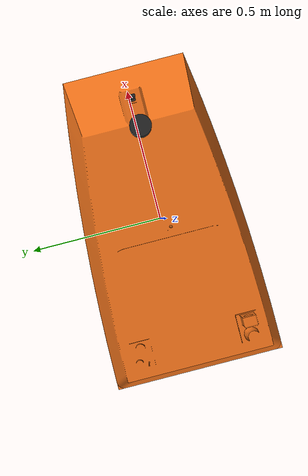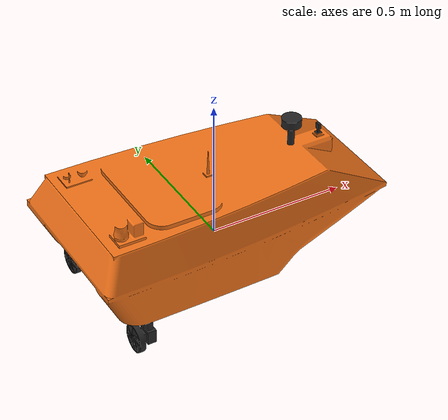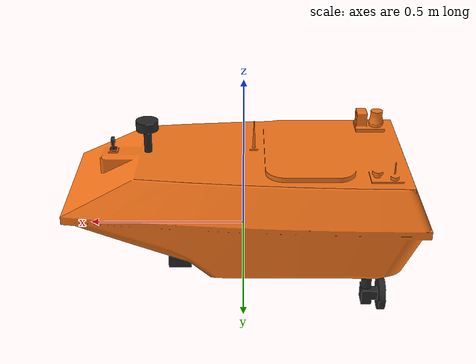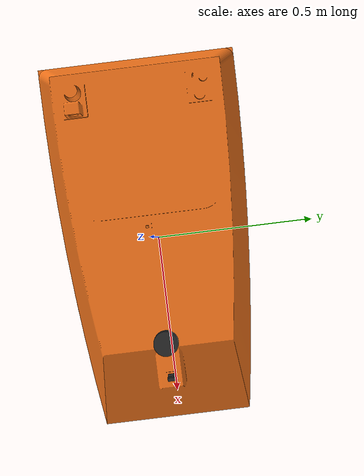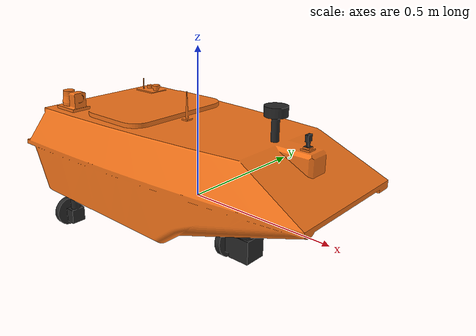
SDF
<?xml version="1.0" ?>
<sdf version="1.9">
  <model name="vedc_buoy">

    <!-- ===================== hull ===================== -->
    <link name="base_link">
      <inertial>
        <pose>0 0 0.02 0 0 0</pose>
        <mass>15.0</mass>
        <!-- solid box 1.10 x 0.60 x 0.25 m -->
        <inertia>
          <ixx>0.528</ixx>
          <ixy>0</ixy>
          <ixz>0</ixz>
          <iyy>1.591</iyy>
          <iyz>0</iyz>
          <izz>1.963</izz>
        </inertia>
      </inertial>

      <!-- Buoyancy and drag come from these collision shapes, not from the mesh: two boxes with
           the footprint of the CAD hulls (0.132 m wide, 0.235 m off the centreline). -->
      <collision name="hull_port_collision">
        <pose>0 0.23 0.05 0 0 0</pose>
        <geometry><box><size>1.10 0.14 0.20</size></box></geometry>
      </collision>
      <collision name="hull_stbd_collision">
        <pose>0 -0.23 0.05 0 0 0</pose>
        <geometry><box><size>1.10 0.14 0.20</size></box></geometry>
      </collision>

      <visual name="cad_visual">
        <geometry><mesh><uri>model://vedc_buoy/meshes/hull.stl</uri></mesh></geometry>
        <material>
          <ambient>0.95 0.45 0.10 1</ambient>
          <diffuse>0.95 0.45 0.10 1</diffuse>
          <specular>0.2 0.2 0.2 1</specular>
        </material>
      </visual>
      <!-- The front motor hangs 0.09 m lower than in the CAD: this strut fills the gap up to the tunnel roof. -->
      <visual name="front_strut_visual">
        <pose>0.21 0 0.085 0 0 0</pose>
        <geometry><box><size>0.075 0.03 0.09</size></box></geometry>
        <material><ambient>0.12 0.12 0.12 1</ambient><diffuse>0.15 0.15 0.15 1</diffuse><specular>0.2 0.2 0.2 1</specular></material>
      </visual>
      <!-- Flight controller IMU, in the electronics box. On the hull link itself:
           a light IMU link on a fixed joint picked up solver jitter. -->
      <sensor name="imu_sensor" type="imu">
        <pose degrees="true">-0.10 0 0.20 180 0 0</pose>
        <always_on>1</always_on>
        <update_rate>1000.0</update_rate>
      </sensor>
    </link>

    <!-- ===================== pods ===================== -->
    <link name="pod_rear_left_link">
      <pose>-0.40 0.234 -0.115 0 0 0</pose>
      <inertial>
        <mass>0.1</mass>
        <inertia><ixx>1e-4</ixx><ixy>0</ixy><ixz>0</ixz><iyy>1e-4</iyy><iyz>0</iyz><izz>1e-4</izz></inertia>
      </inertial>
      <visual name="cad_visual">
        <geometry><mesh><uri>model://vedc_buoy/meshes/pod_rear_left.stl</uri></mesh></geometry>
        <material><ambient>0.12 0.12 0.12 1</ambient><diffuse>0.15 0.15 0.15 1</diffuse><specular>0.2 0.2 0.2 1</specular></material>
      </visual>
    </link>
    <joint name="pod_rear_left_joint" type="revolute">
      <parent>base_link</parent>
      <child>pod_rear_left_link</child>
      <axis>
        <xyz>0 0 1</xyz>
        <limit><lower>-0.8</lower><upper>0.8</upper><effort>1e6</effort></limit>
        <dynamics><damping>0.05</damping></dynamics>
      </axis>
    </joint>
    <link name="prop_rear_left_link">
      <pose>-0.43 0.234 -0.115 0 0 0</pose>
      <inertial>
        <mass>0.05</mass>
        <!-- far above a real prop, as in the BlueBoat model: a light spinning link destabilises the solver -->
        <inertia><ixx>0.1</ixx><ixy>0</ixy><ixz>0</ixz><iyy>0.1</iyy><iyz>0</iyz><izz>0.1</izz></inertia>
      </inertial>
    </link>
    <joint name="prop_rear_left_joint" type="revolute">
      <parent>pod_rear_left_link</parent>
      <child>prop_rear_left_link</child>
      <axis>
        <xyz>1 0 0</xyz>
        <limit><lower>-1e16</lower><upper>1e16</upper></limit>
        <dynamics><damping>0.02</damping></dynamics>
      </axis>
    </joint>

    <link name="pod_rear_right_link">
      <pose>-0.40 -0.234 -0.115 0 0 0</pose>
      <inertial>
        <mass>0.1</mass>
        <inertia><ixx>1e-4</ixx><ixy>0</ixy><ixz>0</ixz><iyy>1e-4</iyy><iyz>0</iyz><izz>1e-4</izz></inertia>
      </inertial>
      <visual name="cad_visual">
        <geometry><mesh><uri>model://vedc_buoy/meshes/pod_rear_right.stl</uri></mesh></geometry>
        <material><ambient>0.12 0.12 0.12 1</ambient><diffuse>0.15 0.15 0.15 1</diffuse><specular>0.2 0.2 0.2 1</specular></material>
      </visual>
    </link>
    <joint name="pod_rear_right_joint" type="revolute">
      <parent>base_link</parent>
      <child>pod_rear_right_link</child>
      <axis>
        <xyz>0 0 1</xyz>
        <limit><lower>-0.8</lower><upper>0.8</upper><effort>1e6</effort></limit>
        <dynamics><damping>0.05</damping></dynamics>
      </axis>
    </joint>
    <link name="prop_rear_right_link">
      <pose>-0.43 -0.234 -0.115 0 0 0</pose>
      <inertial>
        <mass>0.05</mass>
        <!-- far above a real prop, as in the BlueBoat model: a light spinning link destabilises the solver -->
        <inertia><ixx>0.1</ixx><ixy>0</ixy><ixz>0</ixz><iyy>0.1</iyy><iyz>0</iyz><izz>0.1</izz></inertia>
      </inertial>
    </link>
    <joint name="prop_rear_right_joint" type="revolute">
      <parent>pod_rear_right_link</parent>
      <child>prop_rear_right_link</child>
      <axis>
        <xyz>1 0 0</xyz>
        <limit><lower>-1e16</lower><upper>1e16</upper></limit>
        <dynamics><damping>0.02</damping></dynamics>
      </axis>
    </joint>

    <link name="pod_front_link">
      <pose>0.19 0 -0.11 0 0 0</pose>
      <inertial>
        <mass>0.1</mass>
        <inertia><ixx>1e-4</ixx><ixy>0</ixy><ixz>0</ixz><iyy>1e-4</iyy><iyz>0</iyz><izz>1e-4</izz></inertia>
      </inertial>
      <visual name="cad_visual">
        <geometry><mesh><uri>model://vedc_buoy/meshes/pod_front.stl</uri></mesh></geometry>
        <material><ambient>0.12 0.12 0.12 1</ambient><diffuse>0.15 0.15 0.15 1</diffuse><specular>0.2 0.2 0.2 1</specular></material>
      </visual>
    </link>
    <joint name="pod_front_joint" type="revolute">
      <parent>base_link</parent>
      <child>pod_front_link</child>
      <axis>
        <xyz>0 0 1</xyz>
        <limit><lower>-0.8</lower><upper>0.8</upper><effort>1e6</effort></limit>
        <dynamics><damping>0.05</damping></dynamics>
      </axis>
    </joint>
    <link name="prop_front_link">
      <pose>0.16 0 -0.11 0 0 0</pose>
      <inertial>
        <mass>0.05</mass>
        <!-- far above a real prop, as in the BlueBoat model: a light spinning link destabilises the solver -->
        <inertia><ixx>0.1</ixx><ixy>0</ixy><ixz>0</ixz><iyy>0.1</iyy><iyz>0</iyz><izz>0.1</izz></inertia>
      </inertial>
    </link>
    <joint name="prop_front_joint" type="revolute">
      <parent>pod_front_link</parent>
      <child>prop_front_link</child>
      <axis>
        <xyz>1 0 0</xyz>
        <limit><lower>-1e16</lower><upper>1e16</upper></limit>
        <dynamics><damping>0.02</damping></dynamics>
      </axis>
    </joint>

    <!-- ===================== sensors ===================== -->
    <link name="sensor_mast_link">
      <pose>0.30 0 0.32 0 0 0</pose>
      <inertial>
        <mass>0.2</mass>
        <inertia><ixx>1e-4</ixx><ixy>0</ixy><ixz>0</ixz><iyy>1e-4</iyy><iyz>0</iyz><izz>1e-4</izz></inertia>
      </inertial>
      <visual name="mast_visual">
        <pose>0 0 -0.02 0 0 0</pose>
        <geometry><cylinder><radius>0.012</radius><length>0.08</length></cylinder></geometry>
        <material><ambient>0.12 0.12 0.12 1</ambient><diffuse>0.15 0.15 0.15 1</diffuse><specular>0.2 0.2 0.2 1</specular></material>
      </visual>
      <!-- The LiDAR unit, about the size of the LDS-008: its top stays below the scan plane. -->
      <visual name="lidar_visual">
        <pose>0 0 0.03 0 0 0</pose>
        <geometry><cylinder><radius>0.035</radius><length>0.03</length></cylinder></geometry>
        <material><ambient>0.12 0.12 0.12 1</ambient><diffuse>0.15 0.15 0.15 1</diffuse><specular>0.2 0.2 0.2 1</specular></material>
      </visual>
      <!-- LDS-008 robot-vacuum lidar: 360 points per turn, about 5 turns per second
           (figures of its sibling LDS-006). The 8 m range is not confirmed for this unit. -->
      <sensor name="lidar" type="gpu_lidar">
        <pose>0 0 0.05 0 0 0</pose>
        <always_on>1</always_on>
        <update_rate>5</update_rate>
        <topic>vedc_buoy/lidar</topic>
        <lidar>
          <scan>
            <horizontal>
              <samples>360</samples>
              <resolution>1</resolution>
              <min_angle>-3.14159</min_angle>
              <max_angle>3.14159</max_angle>
            </horizontal>
            <vertical>
              <samples>1</samples>
              <resolution>1</resolution>
              <min_angle>0</min_angle>
              <max_angle>0</max_angle>
            </vertical>
          </scan>
          <range><min>0.15</min><max>8.0</max><resolution>0.01</resolution></range>
          <noise><type>gaussian</type><mean>0</mean><stddev>0.01</stddev></noise>
        </lidar>
      </sensor>
    </link>
    <joint name="sensor_mast_joint" type="fixed">
      <parent>base_link</parent>
      <child>sensor_mast_link</child>
    </joint>

    <!-- OV9726 camera on an SG90 pan servo, on the bow box where the CAD has it. The link shows
         the CAD's camera body and pans with the servo. -->
    <link name="camera_link">
      <pose>0.41 0 0.295 0 0 0</pose>
      <inertial>
        <mass>0.03</mass>
        <inertia><ixx>1e-4</ixx><ixy>0</ixy><ixz>0</ixz><iyy>1e-4</iyy><iyz>0</iyz><izz>1e-4</izz></inertia>
      </inertial>
      <visual name="cad_visual">
        <geometry><mesh><uri>model://vedc_buoy/meshes/camera.stl</uri></mesh></geometry>
        <material><ambient>0.12 0.12 0.12 1</ambient><diffuse>0.15 0.15 0.15 1</diffuse><specular>0.2 0.2 0.2 1</specular></material>
      </visual>
      <!-- OV9726 with the team's 60 deg lens. Horizontal FOV must match
           camera.horizontal_fov_deg in the Pi's settings.yaml; at 4:3 that is 46.8 deg vertical. -->
      <sensor name="camera" type="camera">
        <pose>0.02 0 0 0 0 0</pose>
        <always_on>1</always_on>
        <update_rate>15</update_rate>
        <topic>vedc_buoy/camera</topic>
        <camera>
          <horizontal_fov>1.0472</horizontal_fov>
          <image><width>640</width><height>480</height><format>R8G8B8</format></image>
          <clip><near>0.05</near><far>200</far></clip>
        </camera>
      </sensor>
    </link>
    <!-- Axis points down so a positive angle pans right, the convention of
         Rasp_Pi/modules/perception.py track_pan and of the CAM packet. -->
    <joint name="camera_pan_joint" type="revolute">
      <parent>sensor_mast_link</parent>
      <child>camera_link</child>
      <axis>
        <xyz>0 0 -1</xyz>
        <limit><lower>-1.5708</lower><upper>1.5708</upper><effort>1e6</effort></limit>
        <dynamics><damping>0.01</damping></dynamics>
      </axis>
    </joint>

    <!-- ===================== plugins ===================== -->
    <plugin name="gz::sim::systems::JointStatePublisher" filename="gz-sim-joint-state-publisher-system"/>
    <plugin name="gz::sim::systems::OdometryPublisher" filename="gz-sim-odometry-publisher-system">
      <odom_frame>odom</odom_frame>
      <robot_base_frame>base_link</robot_base_frame>
      <dimensions>3</dimensions>
    </plugin>

    <!-- Thrusters: cmd_thrust in newtons along each pod's x axis. -->
    <plugin name="gz::sim::systems::Thruster" filename="gz-sim-thruster-system">
      <namespace>vedc_buoy</namespace>
      <joint_name>prop_rear_left_joint</joint_name>
      <thrust_coefficient>0.02</thrust_coefficient>
      <fluid_density>1000</fluid_density>
      <propeller_diameter>0.06</propeller_diameter>
      <velocity_control>0</velocity_control>
      <use_angvel_cmd>0</use_angvel_cmd>
    </plugin>
    <plugin name="gz::sim::systems::Thruster" filename="gz-sim-thruster-system">
      <namespace>vedc_buoy</namespace>
      <joint_name>prop_rear_right_joint</joint_name>
      <thrust_coefficient>0.02</thrust_coefficient>
      <fluid_density>1000</fluid_density>
      <propeller_diameter>0.06</propeller_diameter>
      <velocity_control>0</velocity_control>
      <use_angvel_cmd>0</use_angvel_cmd>
    </plugin>
    <plugin name="gz::sim::systems::Thruster" filename="gz-sim-thruster-system">
      <namespace>vedc_buoy</namespace>
      <joint_name>prop_front_joint</joint_name>
      <thrust_coefficient>0.02</thrust_coefficient>
      <fluid_density>1000</fluid_density>
      <propeller_diameter>0.06</propeller_diameter>
      <velocity_control>0</velocity_control>
      <use_angvel_cmd>0</use_angvel_cmd>
    </plugin>

    <!-- Pod servos (DS51150-12V, 0.21 s per 60 deg = 5 rad/s): position commands in radians. -->
    <plugin name="gz::sim::systems::JointPositionController" filename="gz-sim-joint-position-controller-system">
      <joint_name>pod_rear_left_joint</joint_name>
      <topic>/model/vedc_buoy/joint/pod_rear_left_joint/cmd_pos</topic>
      <use_velocity_commands>true</use_velocity_commands>
      <p_gain>12</p_gain>
      <cmd_max>5</cmd_max>
      <cmd_min>-5</cmd_min>
    </plugin>
    <plugin name="gz::sim::systems::JointPositionController" filename="gz-sim-joint-position-controller-system">
      <joint_name>pod_rear_right_joint</joint_name>
      <topic>/model/vedc_buoy/joint/pod_rear_right_joint/cmd_pos</topic>
      <use_velocity_commands>true</use_velocity_commands>
      <p_gain>12</p_gain>
      <cmd_max>5</cmd_max>
      <cmd_min>-5</cmd_min>
    </plugin>
    <plugin name="gz::sim::systems::JointPositionController" filename="gz-sim-joint-position-controller-system">
      <joint_name>pod_front_joint</joint_name>
      <topic>/model/vedc_buoy/joint/pod_front_joint/cmd_pos</topic>
      <use_velocity_commands>true</use_velocity_commands>
      <p_gain>12</p_gain>
      <cmd_max>5</cmd_max>
      <cmd_min>-5</cmd_min>
    </plugin>

    <!-- Camera pan (SG90, about 0.1 s per 60 deg = 10 rad/s): angle in radians, positive right.
         On the boat the Blue Pill drives this servo for the Pi; here the Pi code publishes the topic. -->
    <plugin name="gz::sim::systems::JointPositionController" filename="gz-sim-joint-position-controller-system">
      <joint_name>camera_pan_joint</joint_name>
      <topic>/model/vedc_buoy/joint/camera_pan_joint/cmd_pos</topic>
      <use_velocity_commands>true</use_velocity_commands>
      <p_gain>20</p_gain>
      <cmd_max>10</cmd_max>
      <cmd_min>-10</cmd_min>
    </plugin>

    <plugin name="gz::sim::systems::Hydrodynamics" filename="gz-waves1-hydrodynamics-system">
      <enable>vedc_buoy::base_link</enable>
      <hydrodynamics>
        <damping_on>1</damping_on>
        <viscous_drag_on>1</viscous_drag_on>
        <pressure_drag_on>1</pressure_drag_on>
      </hydrodynamics>
    </plugin>

    <plugin name="ArduPilotPlugin" filename="ArduPilotPlugin">
      <fdm_addr>127.0.0.1</fdm_addr>
      <fdm_port_in>9002</fdm_port_in>
      <connectionTimeoutMaxCount>5</connectionTimeoutMaxCount>
      <lock_step>1</lock_step>
      <gazeboXYZToNED degrees="true">0 0 0 180 0 90</gazeboXYZToNED>
      <modelXYZToAirplaneXForwardZDown degrees="true">0 0 0 180 0 0</modelXYZToAirplaneXForwardZDown>
      <imuName>base_link::imu_sensor</imuName>

      <!-- SERVO1 ThrottleLeft: +-15 N -->
      <control channel="0">
        <jointName>prop_rear_left_joint</jointName>
        <multiplier>30</multiplier>
        <offset>-0.5</offset>
        <servo_min>1000</servo_min>
        <servo_max>2000</servo_max>
        <type>COMMAND</type>
        <cmd_topic>/model/vedc_buoy/joint/prop_rear_left_joint/cmd_thrust</cmd_topic>
      </control>
      <!-- SERVO2 GroundSteering: rear pods, +-45 deg; positive (bow right) turns them anticlockwise -->
      <control channel="1">
        <jointName>pod_rear_left_joint</jointName>
        <multiplier>1.5708</multiplier>
        <offset>-0.5</offset>
        <servo_min>1000</servo_min>
        <servo_max>2000</servo_max>
        <type>COMMAND</type>
        <cmd_topic>/model/vedc_buoy/joint/pod_rear_left_joint/cmd_pos</cmd_topic>
      </control>
      <control channel="1">
        <jointName>pod_rear_right_joint</jointName>
        <multiplier>1.5708</multiplier>
        <offset>-0.5</offset>
        <servo_min>1000</servo_min>
        <servo_max>2000</servo_max>
        <type>COMMAND</type>
        <cmd_topic>/model/vedc_buoy/joint/pod_rear_right_joint/cmd_pos</cmd_topic>
      </control>
      <!-- SERVO3 ThrottleRight: +-15 N -->
      <control channel="2">
        <jointName>prop_rear_right_joint</jointName>
        <multiplier>30</multiplier>
        <offset>-0.5</offset>
        <servo_min>1000</servo_min>
        <servo_max>2000</servo_max>
        <type>COMMAND</type>
        <cmd_topic>/model/vedc_buoy/joint/prop_rear_right_joint/cmd_thrust</cmd_topic>
      </control>
      <!-- SERVO4 Throttle: front motor, +-10 N, 1500 us stop -->
      <control channel="3">
        <jointName>prop_front_joint</jointName>
        <multiplier>20</multiplier>
        <offset>-0.5</offset>
        <servo_min>1000</servo_min>
        <servo_max>2000</servo_max>
        <type>COMMAND</type>
        <cmd_topic>/model/vedc_buoy/joint/prop_front_joint/cmd_thrust</cmd_topic>
      </control>
      <!-- SERVO5 GroundSteering reversed: front pod, opposite to the rear ones -->
      <control channel="4">
        <jointName>pod_front_joint</jointName>
        <multiplier>1.5708</multiplier>
        <offset>-0.5</offset>
        <servo_min>1000</servo_min>
        <servo_max>2000</servo_max>
        <type>COMMAND</type>
        <cmd_topic>/model/vedc_buoy/joint/pod_front_joint/cmd_pos</cmd_topic>
      </control>
    </plugin>
  </model>
</sdf>
